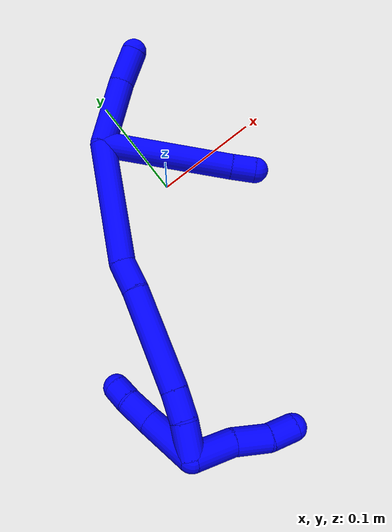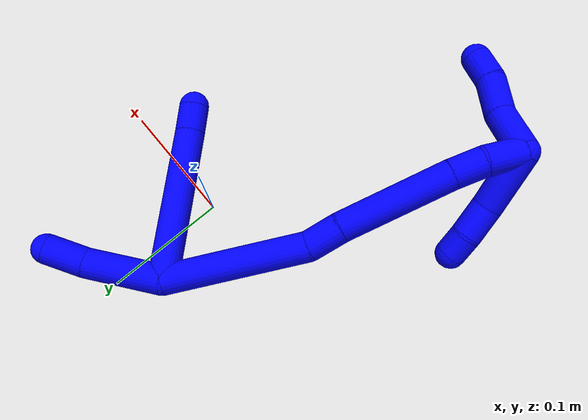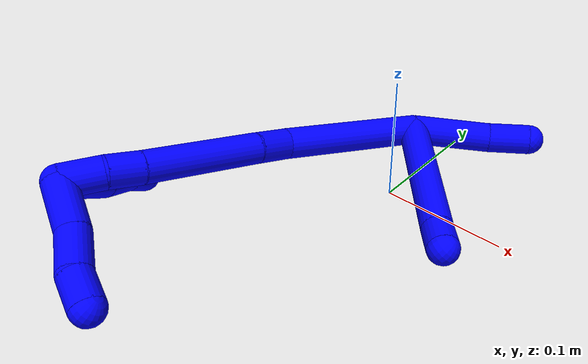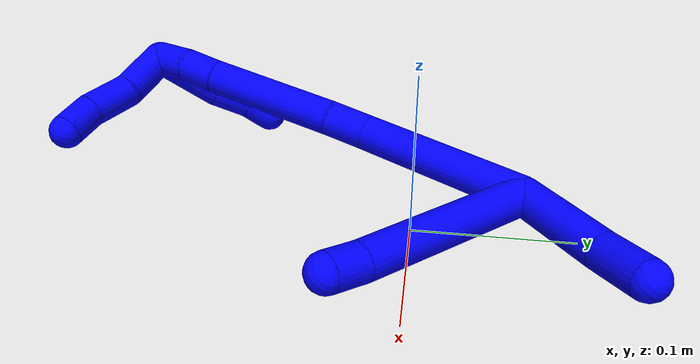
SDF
<sdf version="1.7">
 <world name="default">
  <model name="photoneo_s_sensor">
   <static>1</static>
   <pose>0 0 2 1.57079 1.57079 3.14159</pose>
   <link name="link">
    <inertial><mass>0.1</mass></inertial>
    <sensor name="sensor" type="depth">
     <update_rate>30</update_rate>
     <camera>
      <horizontal_fov>1.22</horizontal_fov>
      <image><width>1920</width><height>1200</height><format>B8G8R8</format></image>
      <clip><near>0.1</near><far>4</far></clip>
      <depth_camera><output>points</output></depth_camera>
     </camera>
     <plugin name="camera_plugin" filename="libgazebo_ros_depth_camera.so">
      <baseline>0.2</baseline>
      <alwaysOn>1</alwaysOn>
      <updateRate>0.0</updateRate>
      <cameraName>camera_ir</cameraName>
      <imageTopicName>/camera/color/image_raw</imageTopicName>
      <cameraInfoTopicName>/camera/color/camera_info</cameraInfoTopicName>
      <depthImageTopicName>/camera/depth/image_raw</depthImageTopicName>
      <depthImageCameraInfoTopicName>/camera/depth/camera_info</depthImageCameraInfoTopicName>
      <pointCloudTopicName>/camera/depth/points</pointCloudTopicName>
      <frameName>fr_optical</frameName>
      <pointCloudCutoff>0.1</pointCloudCutoff>
      <pointCloudCutoffMax>2.0</pointCloudCutoffMax>
      <distortionK1>0</distortionK1>
      <distortionK2>0</distortionK2>
      <distortionK3>0</distortionK3>
      <distortionT1>0</distortionT1>
      <distortionT2>0</distortionT2>
      <CxPrime>0</CxPrime>
      <Cx>0</Cx>
      <Cy>0</Cy>
      <focalLength>0</focalLength>
      <hackBaseline>0</hackBaseline>
     </plugin>
    </sensor>
   </link>
  </model>
  <model name="bin">
   <static>1</static>
   <link name="bottom">
    <collision name="collision-bottom">
     <pose>0 0 -0.01 0 -0 0</pose>
     <geometry><box><size>0.8 0.6 0.02</size></box></geometry>
     <surface>
      <friction><ode><mu>100</mu><mu2>100</mu2></ode></friction>
      <contact><collide_bitmask>65535</collide_bitmask></contact>
     </surface>
    </collision>
   </link>
   <link name="west_wall">
    <collision name="collision-west_wall">
     <pose>-0.41 0 0.1 0 -0 0</pose>
     <geometry><box><size>0.02 0.6 0.2</size></box></geometry>
     <surface>
      <friction><ode><mu>100</mu><mu2>100</mu2></ode></friction>
      <contact><collide_bitmask>65535</collide_bitmask></contact>
     </surface>
    </collision>
   </link>
   <link name="east_wall">
    <collision name="collision-east_wall">
     <pose>0.41 0 0.1 0 -0 0</pose>
     <geometry><box><size>0.02 0.6 0.2</size></box></geometry>
     <surface>
      <friction><ode><mu>100</mu><mu2>100</mu2></ode></friction>
      <contact><collide_bitmask>65535</collide_bitmask></contact>
     </surface>
    </collision>
   </link>
   <link name="south_wall">
    <collision name="collision-south_wall">
     <pose>0 -0.31 0.1 0 -0 0</pose>
     <geometry><box><size>0.8 0.02 0.2</size></box></geometry>
     <surface>
      <friction><ode><mu>100</mu><mu2>100</mu2></ode></friction>
      <contact><collide_bitmask>65535</collide_bitmask></contact>
     </surface>
    </collision>
   </link>
   <link name="north_wall">
    <collision name="collision-north_wall">
     <pose>0 0.31 0.1 0 -0 0</pose>
     <geometry><box><size>0.8 0.02 0.2</size></box></geometry>
     <surface>
      <friction><ode><mu>100</mu><mu2>100</mu2></ode></friction>
      <contact><collide_bitmask>65535</collide_bitmask></contact>
     </surface>
    </collision>
   </link>
  </model>
  <model name="1">
   <static>0</static>
   <link name="1">
    <collision name="collision-cylinder-e_1_2_8">
     <pose>0.039285 -0.049537 -0.003282 1.63696 0.669416 0.711576</pose>
     <geometry><cylinder><radius>0.0125</radius><length>0.126618</length></cylinder></geometry>
     <surface>
      <friction><ode><mu>1.16</mu><mu2>1.16</mu2><slip1>0</slip1><slip2>0</slip2></ode></friction>
      <contact><ode><kp>1e+06</kp><kd>1</kd><max_vel>0</max_vel><min_depth>0.001</min_depth></ode></contact>
     </surface>
    </collision>
    <visual name="visual-cylinder-e_1_2_8">
     <pose>0.039285 -0.049537 -0.003282 1.63696 0.669416 0.711576</pose>
     <geometry><cylinder><radius>0.0125</radius><length>0.126618</length></cylinder></geometry>
     <material><ambient>0 0 1 1</ambient></material>
    </visual>
    <collision name="collision-cylinder-e_2_8_6">
     <pose>0.085212 -0.108691 -0.006281 1.54134 0.604223 0.587687</pose>
     <geometry><cylinder><radius>0.0125</radius><length>0.023382</length></cylinder></geometry>
     <surface>
      <friction><ode><mu>1.16</mu><mu2>1.16</mu2><slip1>0</slip1><slip2>0</slip2></ode></friction>
      <contact><ode><kp>1e+06</kp><kd>1</kd><max_vel>0</max_vel><min_depth>0.001</min_depth></ode></contact>
     </surface>
    </collision>
    <visual name="visual-cylinder-e_2_8_6">
     <pose>0.085212 -0.108691 -0.006281 1.54134 0.604223 0.587687</pose>
     <geometry><cylinder><radius>0.0125</radius><length>0.023382</length></cylinder></geometry>
     <material><ambient>0 0 1 1</ambient></material>
    </visual>
    <collision name="collision-cylinder-e_1_2_9">
     <pose>0.022949 0.012928 0.019539 -0.584514 0.775065 -0.244393</pose>
     <geometry><cylinder><radius>0.0125</radius><length>0.065592</length></cylinder></geometry>
     <surface>
      <friction><ode><mu>1.16</mu><mu2>1.16</mu2><slip1>0</slip1><slip2>0</slip2></ode></friction>
      <contact><ode><kp>1e+06</kp><kd>1</kd><max_vel>0</max_vel><min_depth>0.001</min_depth></ode></contact>
     </surface>
    </collision>
    <visual name="visual-cylinder-e_1_2_9">
     <pose>0.022949 0.012928 0.019539 -0.584514 0.775065 -0.244393</pose>
     <geometry><cylinder><radius>0.0125</radius><length>0.065592</length></cylinder></geometry>
     <material><ambient>0 0 1 1</ambient></material>
    </visual>
    <collision name="collision-cylinder-e_2_9_5">
     <pose>0.057638 0.030031 0.050942 -0.338395 0.750955 -0.134472</pose>
     <geometry><cylinder><radius>0.0125</radius><length>0.034408</length></cylinder></geometry>
     <surface>
      <friction><ode><mu>1.16</mu><mu2>1.16</mu2><slip1>0</slip1><slip2>0</slip2></ode></friction>
      <contact><ode><kp>1e+06</kp><kd>1</kd><max_vel>0</max_vel><min_depth>0.001</min_depth></ode></contact>
     </surface>
    </collision>
    <visual name="visual-cylinder-e_2_9_5">
     <pose>0.057638 0.030031 0.050942 -0.338395 0.750955 -0.134472</pose>
     <geometry><cylinder><radius>0.0125</radius><length>0.034408</length></cylinder></geometry>
     <material><ambient>0 0 1 1</ambient></material>
    </visual>
    <collision name="collision-cylinder-e_1_2_10">
     <pose>-0.02533 -0.042825 -0.032523 2.22031 -0.440211 -0.847108</pose>
     <geometry><cylinder><radius>0.0125</radius><length>0.118883</length></cylinder></geometry>
     <surface>
      <friction><ode><mu>1.16</mu><mu2>1.16</mu2><slip1>0</slip1><slip2>0</slip2></ode></friction>
      <contact><ode><kp>1e+06</kp><kd>1</kd><max_vel>0</max_vel><min_depth>0.001</min_depth></ode></contact>
     </surface>
    </collision>
    <visual name="visual-cylinder-e_1_2_10">
     <pose>-0.02533 -0.042825 -0.032523 2.22031 -0.440211 -0.847108</pose>
     <geometry><cylinder><radius>0.0125</radius><length>0.118883</length></cylinder></geometry>
     <material><ambient>0 0 1 1</ambient></material>
    </visual>
    <collision name="collision-cylinder-e_2_10_11">
     <pose>-0.054506 -0.098917 -0.070064 1.93245 -0.264802 -0.380872</pose>
     <geometry><cylinder><radius>0.0125</radius><length>0.029395</length></cylinder></geometry>
     <surface>
      <friction><ode><mu>1.16</mu><mu2>1.16</mu2><slip1>0</slip1><slip2>0</slip2></ode></friction>
      <contact><ode><kp>1e+06</kp><kd>1</kd><max_vel>0</max_vel><min_depth>0.001</min_depth></ode></contact>
     </surface>
    </collision>
    <visual name="visual-cylinder-e_2_10_11">
     <pose>-0.054506 -0.098917 -0.070064 1.93245 -0.264802 -0.380872</pose>
     <geometry><cylinder><radius>0.0125</radius><length>0.029395</length></cylinder></geometry>
     <material><ambient>0 0 1 1</ambient></material>
    </visual>
    <collision name="collision-cylinder-e_3_11_12">
     <pose>-0.07233 -0.152474 -0.09534 2.03667 -0.300567 -0.481707</pose>
     <geometry><cylinder><radius>0.0125</radius><length>0.094423</length></cylinder></geometry>
     <surface>
      <friction><ode><mu>1.16</mu><mu2>1.16</mu2><slip1>0</slip1><slip2>0</slip2></ode></friction>
      <contact><ode><kp>1e+06</kp><kd>1</kd><max_vel>0</max_vel><min_depth>0.001</min_depth></ode></contact>
     </surface>
    </collision>
    <visual name="visual-cylinder-e_3_11_12">
     <pose>-0.07233 -0.152474 -0.09534 2.03667 -0.300567 -0.481707</pose>
     <geometry><cylinder><radius>0.0125</radius><length>0.094423</length></cylinder></geometry>
     <material><ambient>0 0 1 1</ambient></material>
    </visual>
    <collision name="collision-cylinder-e_4_12_13">
     <pose>-0.090992 -0.203698 -0.121477 2.06418 -0.3608 -0.592361</pose>
     <geometry><cylinder><radius>0.0125</radius><length>0.026538</length></cylinder></geometry>
     <surface>
      <friction><ode><mu>1.16</mu><mu2>1.16</mu2><slip1>0</slip1><slip2>0</slip2></ode></friction>
      <contact><ode><kp>1e+06</kp><kd>1</kd><max_vel>0</max_vel><min_depth>0.001</min_depth></ode></contact>
     </surface>
    </collision>
    <visual name="visual-cylinder-e_4_12_13">
     <pose>-0.090992 -0.203698 -0.121477 2.06418 -0.3608 -0.592361</pose>
     <geometry><cylinder><radius>0.0125</radius><length>0.026538</length></cylinder></geometry>
     <material><ambient>0 0 1 1</ambient></material>
    </visual>
    <collision name="collision-cylinder-e_5_13_1">
     <pose>-0.101262 -0.225487 -0.136711 2.28208 -0.371693 -0.778578</pose>
     <geometry><cylinder><radius>0.0125</radius><length>0.030761</length></cylinder></geometry>
     <surface>
      <friction><ode><mu>1.16</mu><mu2>1.16</mu2><slip1>0</slip1><slip2>0</slip2></ode></friction>
      <contact><ode><kp>1e+06</kp><kd>1</kd><max_vel>0</max_vel><min_depth>0.001</min_depth></ode></contact>
     </surface>
    </collision>
    <visual name="visual-cylinder-e_5_13_1">
     <pose>-0.101262 -0.225487 -0.136711 2.28208 -0.371693 -0.778578</pose>
     <geometry><cylinder><radius>0.0125</radius><length>0.030761</length></cylinder></geometry>
     <material><ambient>0 0 1 1</ambient></material>
    </visual>
    <collision name="collision-cylinder-e_1_1_14">
     <pose>-0.10546 -0.211089 -0.150861 -1.75844 0.053956 -0.065159</pose>
     <geometry><cylinder><radius>0.0125</radius><length>0.051483</length></cylinder></geometry>
     <surface>
      <friction><ode><mu>1.16</mu><mu2>1.16</mu2><slip1>0</slip1><slip2>0</slip2></ode></friction>
      <contact><ode><kp>1e+06</kp><kd>1</kd><max_vel>0</max_vel><min_depth>0.001</min_depth></ode></contact>
     </surface>
    </collision>
    <visual name="visual-cylinder-e_1_1_14">
     <pose>-0.10546 -0.211089 -0.150861 -1.75844 0.053956 -0.065159</pose>
     <geometry><cylinder><radius>0.0125</radius><length>0.051483</length></cylinder></geometry>
     <material><ambient>0 0 1 1</ambient></material>
    </visual>
    <collision name="collision-cylinder-e_2_14_15">
     <pose>-0.104244 -0.171674 -0.155424 -1.5544 -0.012131 0.011934</pose>
     <geometry><cylinder><radius>0.0125</radius><length>0.02833</length></cylinder></geometry>
     <surface>
      <friction><ode><mu>1.16</mu><mu2>1.16</mu2><slip1>0</slip1><slip2>0</slip2></ode></friction>
      <contact><ode><kp>1e+06</kp><kd>1</kd><max_vel>0</max_vel><min_depth>0.001</min_depth></ode></contact>
     </surface>
    </collision>
    <visual name="visual-cylinder-e_2_14_15">
     <pose>-0.104244 -0.171674 -0.155424 -1.5544 -0.012131 0.011934</pose>
     <geometry><cylinder><radius>0.0125</radius><length>0.02833</length></cylinder></geometry>
     <material><ambient>0 0 1 1</ambient></material>
    </visual>
    <collision name="collision-cylinder-e_3_15_4">
     <pose>-0.103093 -0.147567 -0.156293 -1.68102 0.131452 -0.146751</pose>
     <geometry><cylinder><radius>0.0125</radius><length>0.020187</length></cylinder></geometry>
     <surface>
      <friction><ode><mu>1.16</mu><mu2>1.16</mu2><slip1>0</slip1><slip2>0</slip2></ode></friction>
      <contact><ode><kp>1e+06</kp><kd>1</kd><max_vel>0</max_vel><min_depth>0.001</min_depth></ode></contact>
     </surface>
    </collision>
    <visual name="visual-cylinder-e_3_15_4">
     <pose>-0.103093 -0.147567 -0.156293 -1.68102 0.131452 -0.146751</pose>
     <geometry><cylinder><radius>0.0125</radius><length>0.020187</length></cylinder></geometry>
     <material><ambient>0 0 1 1</ambient></material>
    </visual>
    <collision name="collision-cylinder-e_1_1_16">
     <pose>-0.087932 -0.243402 -0.147588 1.78307 1.20609 1.41229</pose>
     <geometry><cylinder><radius>0.0125</radius><length>0.040496</length></cylinder></geometry>
     <surface>
      <friction><ode><mu>1.16</mu><mu2>1.16</mu2><slip1>0</slip1><slip2>0</slip2></ode></friction>
      <contact><ode><kp>1e+06</kp><kd>1</kd><max_vel>0</max_vel><min_depth>0.001</min_depth></ode></contact>
     </surface>
    </collision>
    <visual name="visual-cylinder-e_1_1_16">
     <pose>-0.087932 -0.243402 -0.147588 1.78307 1.20609 1.41229</pose>
     <geometry><cylinder><radius>0.0125</radius><length>0.040496</length></cylinder></geometry>
     <material><ambient>0 0 1 1</ambient></material>
    </visual>
    <collision name="collision-cylinder-e_2_16_17">
     <pose>-0.055284 -0.260299 -0.149818 1.64271 0.947946 1.00761</pose>
     <geometry><cylinder><radius>0.0125</radius><length>0.033813</length></cylinder></geometry>
     <surface>
      <friction><ode><mu>1.16</mu><mu2>1.16</mu2><slip1>0</slip1><slip2>0</slip2></ode></friction>
      <contact><ode><kp>1e+06</kp><kd>1</kd><max_vel>0</max_vel><min_depth>0.001</min_depth></ode></contact>
     </surface>
    </collision>
    <visual name="visual-cylinder-e_2_16_17">
     <pose>-0.055284 -0.260299 -0.149818 1.64271 0.947946 1.00761</pose>
     <geometry><cylinder><radius>0.0125</radius><length>0.033813</length></cylinder></geometry>
     <material><ambient>0 0 1 1</ambient></material>
    </visual>
    <collision name="collision-cylinder-e_3_17_3">
     <pose>-0.029626 -0.274851 -0.149791 1.41602 1.19013 1.05041</pose>
     <geometry><cylinder><radius>0.0125</radius><length>0.025691</length></cylinder></geometry>
     <surface>
      <friction><ode><mu>1.16</mu><mu2>1.16</mu2><slip1>0</slip1><slip2>0</slip2></ode></friction>
      <contact><ode><kp>1e+06</kp><kd>1</kd><max_vel>0</max_vel><min_depth>0.001</min_depth></ode></contact>
     </surface>
    </collision>
    <visual name="visual-cylinder-e_3_17_3">
     <pose>-0.029626 -0.274851 -0.149791 1.41602 1.19013 1.05041</pose>
     <geometry><cylinder><radius>0.0125</radius><length>0.025691</length></cylinder></geometry>
     <material><ambient>0 0 1 1</ambient></material>
    </visual>
    <collision name="collision-sphere-3">
     <pose>-0.0177 -0.279567 -0.149055 0 -0 0</pose>
     <geometry><sphere><radius>0.0125</radius></sphere></geometry>
     <surface>
      <friction><ode><mu>1.16</mu><mu2>1.16</mu2><slip1>0</slip1><slip2>0</slip2></ode></friction>
      <contact><ode><kp>1e+06</kp><kd>1</kd><max_vel>0</max_vel><min_depth>0.001</min_depth></ode></contact>
     </surface>
    </collision>
    <visual name="visual-sphere-3">
     <pose>-0.0177 -0.279567 -0.149055 0 -0 0</pose>
     <geometry><sphere><radius>0.0125</radius></sphere></geometry>
     <material><ambient>0 0 1 1</ambient></material>
    </visual>
    <collision name="collision-sphere-17">
     <pose>-0.041552 -0.270136 -0.150526 0 -0 0</pose>
     <geometry><sphere><radius>0.0125</radius></sphere></geometry>
     <surface>
      <friction><ode><mu>1.16</mu><mu2>1.16</mu2><slip1>0</slip1><slip2>0</slip2></ode></friction>
      <contact><ode><kp>1e+06</kp><kd>1</kd><max_vel>0</max_vel><min_depth>0.001</min_depth></ode></contact>
     </surface>
    </collision>
    <visual name="visual-sphere-17">
     <pose>-0.041552 -0.270136 -0.150526 0 -0 0</pose>
     <geometry><sphere><radius>0.0125</radius></sphere></geometry>
     <material><ambient>0 0 1 1</ambient></material>
    </visual>
    <collision name="collision-sphere-16">
     <pose>-0.069016 -0.250462 -0.149109 0 -0 0</pose>
     <geometry><sphere><radius>0.0125</radius></sphere></geometry>
     <surface>
      <friction><ode><mu>1.16</mu><mu2>1.16</mu2><slip1>0</slip1><slip2>0</slip2></ode></friction>
      <contact><ode><kp>1e+06</kp><kd>1</kd><max_vel>0</max_vel><min_depth>0.001</min_depth></ode></contact>
     </surface>
    </collision>
    <visual name="visual-sphere-16">
     <pose>-0.069016 -0.250462 -0.149109 0 -0 0</pose>
     <geometry><sphere><radius>0.0125</radius></sphere></geometry>
     <material><ambient>0 0 1 1</ambient></material>
    </visual>
    <collision name="collision-sphere-4">
     <pose>-0.10177 -0.137621 -0.157393 0 -0 0</pose>
     <geometry><sphere><radius>0.0125</radius></sphere></geometry>
     <surface>
      <friction><ode><mu>1.16</mu><mu2>1.16</mu2><slip1>0</slip1><slip2>0</slip2></ode></friction>
      <contact><ode><kp>1e+06</kp><kd>1</kd><max_vel>0</max_vel><min_depth>0.001</min_depth></ode></contact>
     </surface>
    </collision>
    <visual name="visual-sphere-4">
     <pose>-0.10177 -0.137621 -0.157393 0 -0 0</pose>
     <geometry><sphere><radius>0.0125</radius></sphere></geometry>
     <material><ambient>0 0 1 1</ambient></material>
    </visual>
    <collision name="collision-sphere-15">
     <pose>-0.104416 -0.157513 -0.155192 0 -0 0</pose>
     <geometry><sphere><radius>0.0125</radius></sphere></geometry>
     <surface>
      <friction><ode><mu>1.16</mu><mu2>1.16</mu2><slip1>0</slip1><slip2>0</slip2></ode></friction>
      <contact><ode><kp>1e+06</kp><kd>1</kd><max_vel>0</max_vel><min_depth>0.001</min_depth></ode></contact>
     </surface>
    </collision>
    <visual name="visual-sphere-15">
     <pose>-0.104416 -0.157513 -0.155192 0 -0 0</pose>
     <geometry><sphere><radius>0.0125</radius></sphere></geometry>
     <material><ambient>0 0 1 1</ambient></material>
    </visual>
    <collision name="collision-sphere-14">
     <pose>-0.104072 -0.185836 -0.155656 0 -0 0</pose>
     <geometry><sphere><radius>0.0125</radius></sphere></geometry>
     <surface>
      <friction><ode><mu>1.16</mu><mu2>1.16</mu2><slip1>0</slip1><slip2>0</slip2></ode></friction>
      <contact><ode><kp>1e+06</kp><kd>1</kd><max_vel>0</max_vel><min_depth>0.001</min_depth></ode></contact>
     </surface>
    </collision>
    <visual name="visual-sphere-14">
     <pose>-0.104072 -0.185836 -0.155656 0 -0 0</pose>
     <geometry><sphere><radius>0.0125</radius></sphere></geometry>
     <material><ambient>0 0 1 1</ambient></material>
    </visual>
    <collision name="collision-sphere-1">
     <pose>-0.106849 -0.236342 -0.146066 0 -0 0</pose>
     <geometry><sphere><radius>0.0125</radius></sphere></geometry>
     <surface>
      <friction><ode><mu>1.16</mu><mu2>1.16</mu2><slip1>0</slip1><slip2>0</slip2></ode></friction>
      <contact><ode><kp>1e+06</kp><kd>1</kd><max_vel>0</max_vel><min_depth>0.001</min_depth></ode></contact>
     </surface>
    </collision>
    <visual name="visual-sphere-1">
     <pose>-0.106849 -0.236342 -0.146066 0 -0 0</pose>
     <geometry><sphere><radius>0.0125</radius></sphere></geometry>
     <material><ambient>0 0 1 1</ambient></material>
    </visual>
    <collision name="collision-sphere-13">
     <pose>-0.095676 -0.214632 -0.127357 0 -0 0</pose>
     <geometry><sphere><radius>0.0125</radius></sphere></geometry>
     <surface>
      <friction><ode><mu>1.16</mu><mu2>1.16</mu2><slip1>0</slip1><slip2>0</slip2></ode></friction>
      <contact><ode><kp>1e+06</kp><kd>1</kd><max_vel>0</max_vel><min_depth>0.001</min_depth></ode></contact>
     </surface>
    </collision>
    <visual name="visual-sphere-13">
     <pose>-0.095676 -0.214632 -0.127357 0 -0 0</pose>
     <geometry><sphere><radius>0.0125</radius></sphere></geometry>
     <material><ambient>0 0 1 1</ambient></material>
    </visual>
    <collision name="collision-sphere-12">
     <pose>-0.086308 -0.192763 -0.115597 0 -0 0</pose>
     <geometry><sphere><radius>0.0125</radius></sphere></geometry>
     <surface>
      <friction><ode><mu>1.16</mu><mu2>1.16</mu2><slip1>0</slip1><slip2>0</slip2></ode></friction>
      <contact><ode><kp>1e+06</kp><kd>1</kd><max_vel>0</max_vel><min_depth>0.001</min_depth></ode></contact>
     </surface>
    </collision>
    <visual name="visual-sphere-12">
     <pose>-0.086308 -0.192763 -0.115597 0 -0 0</pose>
     <geometry><sphere><radius>0.0125</radius></sphere></geometry>
     <material><ambient>0 0 1 1</ambient></material>
    </visual>
    <collision name="collision-sphere-11">
     <pose>-0.058353 -0.112185 -0.075083 0 -0 0</pose>
     <geometry><sphere><radius>0.0125</radius></sphere></geometry>
     <surface>
      <friction><ode><mu>1.16</mu><mu2>1.16</mu2><slip1>0</slip1><slip2>0</slip2></ode></friction>
      <contact><ode><kp>1e+06</kp><kd>1</kd><max_vel>0</max_vel><min_depth>0.001</min_depth></ode></contact>
     </surface>
    </collision>
    <visual name="visual-sphere-11">
     <pose>-0.058353 -0.112185 -0.075083 0 -0 0</pose>
     <geometry><sphere><radius>0.0125</radius></sphere></geometry>
     <material><ambient>0 0 1 1</ambient></material>
    </visual>
    <collision name="collision-sphere-8">
     <pose>0.07857 -0.099074 -0.006565 0 -0 0</pose>
     <geometry><sphere><radius>0.0125</radius></sphere></geometry>
     <surface>
      <friction><ode><mu>1.16</mu><mu2>1.16</mu2><slip1>0</slip1><slip2>0</slip2></ode></friction>
      <contact><ode><kp>1e+06</kp><kd>1</kd><max_vel>0</max_vel><min_depth>0.001</min_depth></ode></contact>
     </surface>
    </collision>
    <visual name="visual-sphere-8">
     <pose>0.07857 -0.099074 -0.006565 0 -0 0</pose>
     <geometry><sphere><radius>0.0125</radius></sphere></geometry>
     <material><ambient>0 0 1 1</ambient></material>
    </visual>
    <collision name="collision-sphere-2">
     <geometry><sphere><radius>0.0125</radius></sphere></geometry>
     <surface>
      <friction><ode><mu>1.16</mu><mu2>1.16</mu2><slip1>0</slip1><slip2>0</slip2></ode></friction>
      <contact><ode><kp>1e+06</kp><kd>1</kd><max_vel>0</max_vel><min_depth>0.001</min_depth></ode></contact>
     </surface>
    </collision>
    <visual name="visual-sphere-2">
     <geometry><sphere><radius>0.0125</radius></sphere></geometry>
     <material><ambient>0 0 1 1</ambient></material>
    </visual>
    <collision name="collision-sphere-9">
     <pose>0.045899 0.025856 0.039078 0 -0 0</pose>
     <geometry><sphere><radius>0.0125</radius></sphere></geometry>
     <surface>
      <friction><ode><mu>1.16</mu><mu2>1.16</mu2><slip1>0</slip1><slip2>0</slip2></ode></friction>
      <contact><ode><kp>1e+06</kp><kd>1</kd><max_vel>0</max_vel><min_depth>0.001</min_depth></ode></contact>
     </surface>
    </collision>
    <visual name="visual-sphere-9">
     <pose>0.045899 0.025856 0.039078 0 -0 0</pose>
     <geometry><sphere><radius>0.0125</radius></sphere></geometry>
     <material><ambient>0 0 1 1</ambient></material>
    </visual>
    <collision name="collision-sphere-6">
     <pose>0.091854 -0.118308 -0.005998 0 -0 0</pose>
     <geometry><sphere><radius>0.0125</radius></sphere></geometry>
     <surface>
      <friction><ode><mu>1.16</mu><mu2>1.16</mu2><slip1>0</slip1><slip2>0</slip2></ode></friction>
      <contact><ode><kp>1e+06</kp><kd>1</kd><max_vel>0</max_vel><min_depth>0.001</min_depth></ode></contact>
     </surface>
    </collision>
    <visual name="visual-sphere-6">
     <pose>0.091854 -0.118308 -0.005998 0 -0 0</pose>
     <geometry><sphere><radius>0.0125</radius></sphere></geometry>
     <material><ambient>0 0 1 1</ambient></material>
    </visual>
    <collision name="collision-sphere-5">
     <pose>0.069377 0.034206 0.062805 0 -0 0</pose>
     <geometry><sphere><radius>0.0125</radius></sphere></geometry>
     <surface>
      <friction><ode><mu>1.16</mu><mu2>1.16</mu2><slip1>0</slip1><slip2>0</slip2></ode></friction>
      <contact><ode><kp>1e+06</kp><kd>1</kd><max_vel>0</max_vel><min_depth>0.001</min_depth></ode></contact>
     </surface>
    </collision>
    <visual name="visual-sphere-5">
     <pose>0.069377 0.034206 0.062805 0 -0 0</pose>
     <geometry><sphere><radius>0.0125</radius></sphere></geometry>
     <material><ambient>0 0 1 1</ambient></material>
    </visual>
    <collision name="collision-sphere-10">
     <pose>-0.05066 -0.08565 -0.065045 0 -0 0</pose>
     <geometry><sphere><radius>0.0125</radius></sphere></geometry>
     <surface>
      <friction><ode><mu>1.16</mu><mu2>1.16</mu2><slip1>0</slip1><slip2>0</slip2></ode></friction>
      <contact><ode><kp>1e+06</kp><kd>1</kd><max_vel>0</max_vel><min_depth>0.001</min_depth></ode></contact>
     </surface>
    </collision>
    <visual name="visual-sphere-10">
     <pose>-0.05066 -0.08565 -0.065045 0 -0 0</pose>
     <geometry><sphere><radius>0.0125</radius></sphere></geometry>
     <material><ambient>0 0 1 1</ambient></material>
    </visual>
    <inertial>
     <pose>-0.030897 -0.1148 -0.066802 0 -0 0</pose>
     <mass>0.75</mass>
     <inertia>
      <ixx>0.000268</ixx>
      <ixy>0</ixy>
      <ixz>0</ixz>
      <iyy>-1.1e-05</iyy>
      <iyz>0</iyz>
      <izz>0.000224</izz>
     </inertia>
    </inertial>
   </link>
   <pose>-0.025145 0.068426 0.017543 -0.505327 0.560914 -0.034551</pose>
  </model>
 </world>
</sdf>
